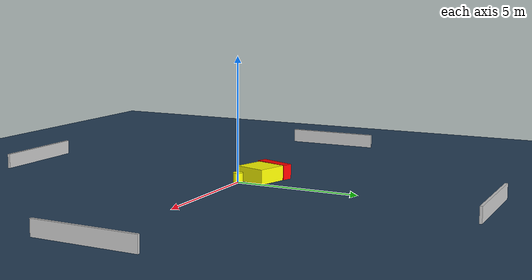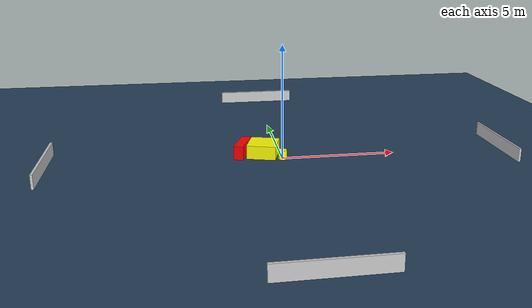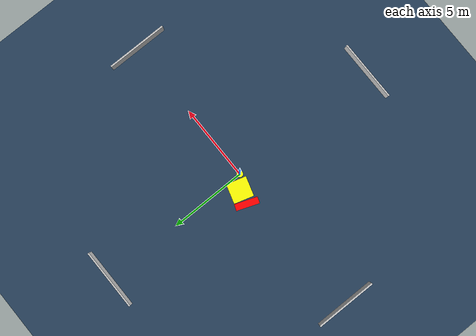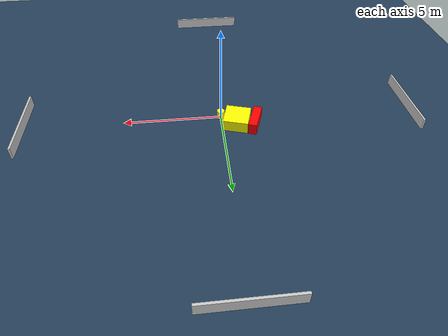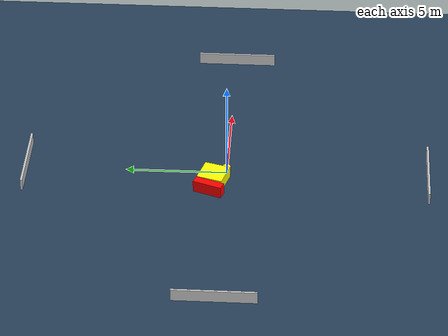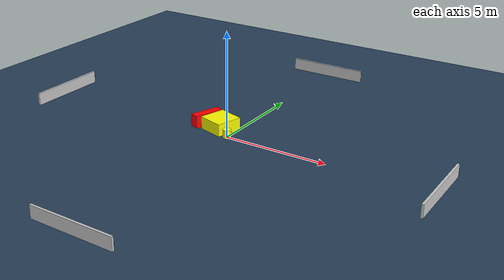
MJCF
<?xml version="1.0" ?>
<mujoco model="generated_environment">
  <option timestep="0.01" integrator="RK4" cone="elliptic"/>
  <default>
    <geom density="1"/>
  </default>
  <asset>
    <texture builtin="gradient" height="3072" name="skybox" rgb1="0.3 0.5 0.7" rgb2="0 0 0" type="skybox" width="512"/>
    <texture builtin="checker" height="300" name="groundplane" rgb1="0.2 0.3 0.4" rgb2="0.1 0.2 0.3" type="2d" width="300"/>
    <material name="groundplane" reflectance="0.2" texrepeat="5 5" texture="groundplane"/>
  </asset>
  <worldbody>
    <light dir="0 0 -1" directional="true" pos="0 0 1.5"/>
    <geom condim="3" friction="0.5 0.005 0.001" material="groundplane" name="floor" pos="0 0 0" size="0 0 0.05" type="plane"/>
    <body name="walls">
      <geom name="wall_1" condim="4" pos="-10.0 0.0 0.3" rgba="0.800000011920929 0.800000011920929 0.800000011920929 1.0" size="0.05 2.0 0.3" type="box"/>
      <geom name="wall_2" condim="4" pos="10.0 0.0 0.3" rgba="0.800000011920929 0.800000011920929 0.800000011920929 1.0" size="0.05 2.0 0.3" type="box"/>
      <geom name="wall_3" condim="4" pos="0.0 -10.0 0.3" rgba="0.800000011920929 0.800000011920929 0.800000011920929 1.0" size="2.0 0.05 0.3" type="box"/>
      <geom name="wall_4" condim="4" pos="0.0 10.0 0.3" rgba="0.800000011920929 0.800000011920929 0.800000011920929 1.0" size="2.0 0.05 0.3" type="box"/>
    </body>
    <body name="robot">
      <joint name="joint_x" type="slide" pos="0 0 0" axis="1 0 0"/>
      <joint name="joint_y" type="slide" pos="0 0 0" axis="0 1 0"/>
      <geom name="robot" type="cylinder" pos="0.0 0.0 0.2" size="0.2 0.2 0.0" mass="5.0" friction="1.0 0.005 0.0001" condim="4" rgba="1.0 1.0 0.0 1.0"/>
    </body>
    <body name="obstacle_1_movable">
      <geom name="obstacle_1_movable" condim="4" pos="-0.7637840328301967 0.6100888250307899 0.3" euler="0 0 343.5539732813482" friction="0.0 0.005 0.001" rgba="1.0 1.0 0.0 1.0" size="0.635112847837518 0.6438133690965689 0.3" type="box" mass="0.1"/>
      <joint type="free"/>
    </body>
    <body name="obstacle_2_static">
      <geom name="obstacle_2_static" condim="4" pos="-1.6636527848899154 0.8020353966576693 0.3" euler="0 0 249.81540117000904" friction="0.0 0.005 0.001" rgba="1.0 0.0 0.0 1.0" size="0.738839457457872 0.21234979308429336 0.3" type="box"/>
    </body>
  </worldbody>
  <actuator>
    <motor name="actuator_x" joint="joint_x" gear="1" ctrlrange="-1 1"/>
    <motor name="actuator_y" joint="joint_y" gear="1" ctrlrange="-1 1"/>
  </actuator>
</mujoco>
